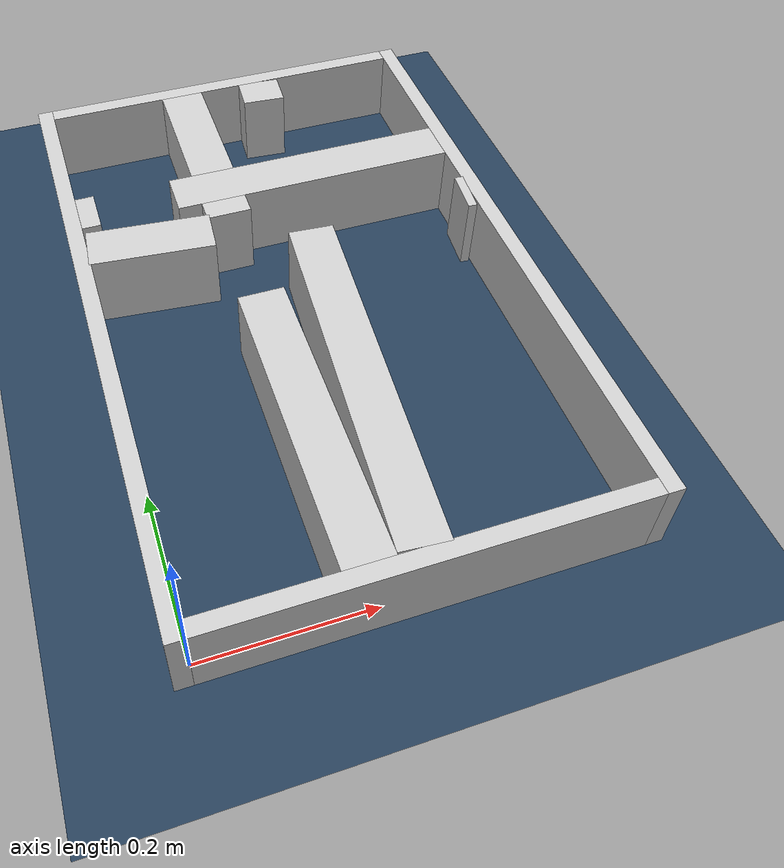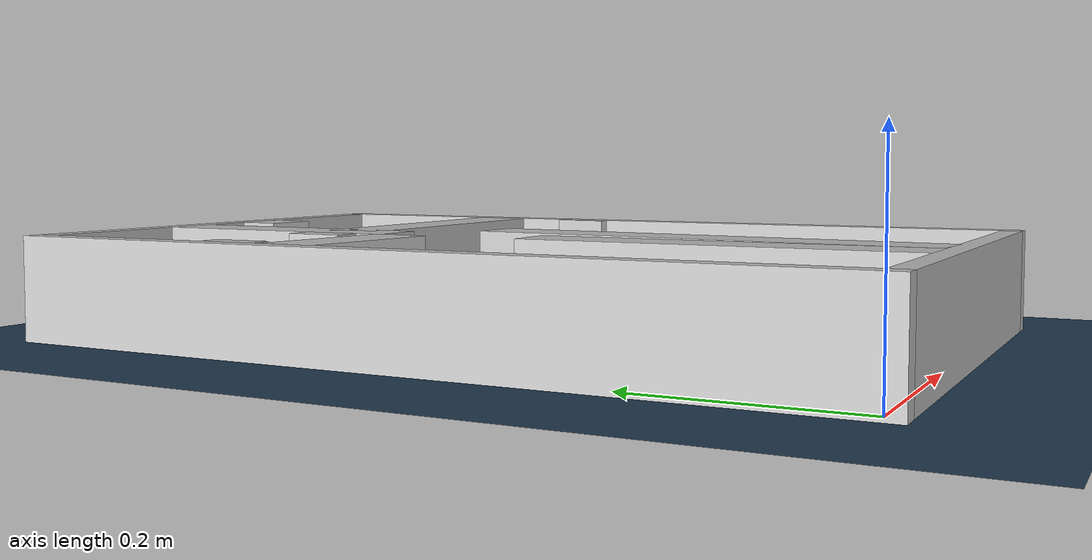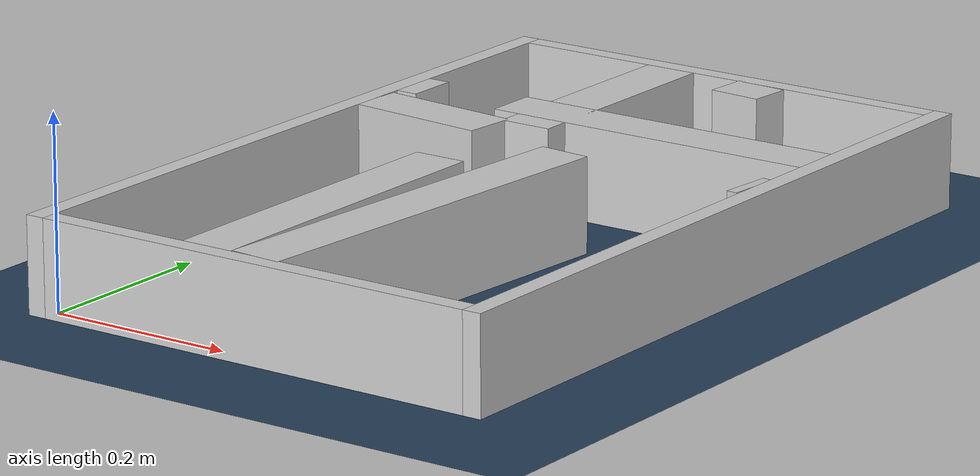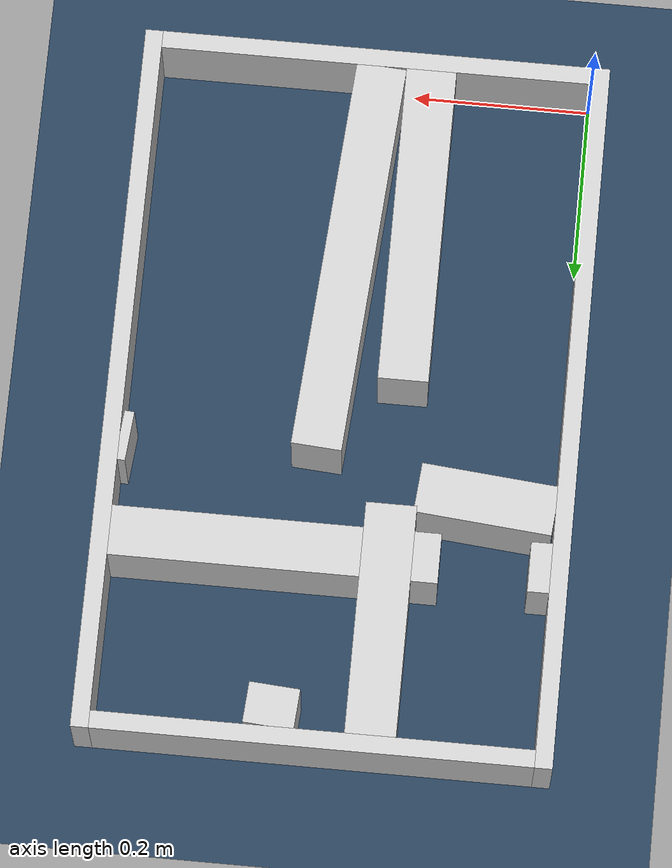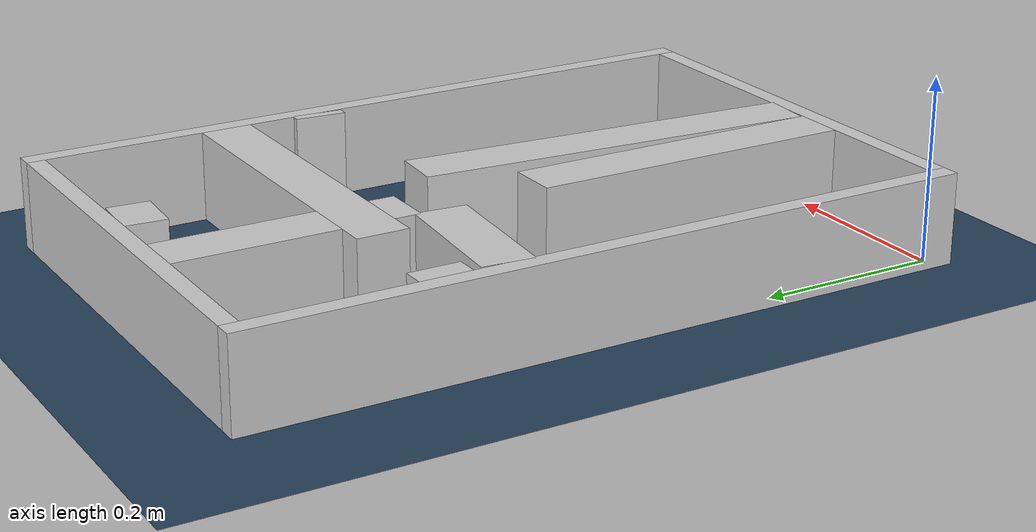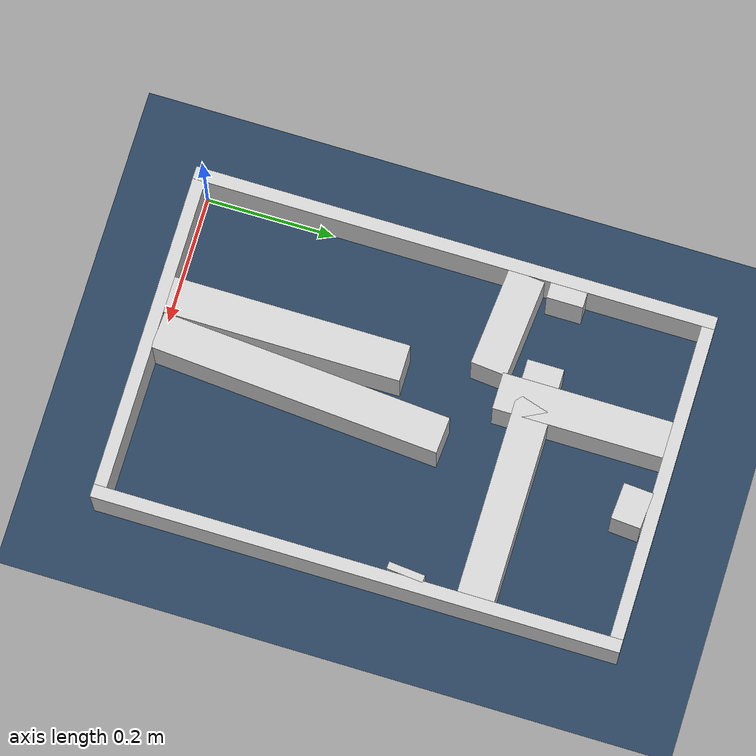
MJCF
<?xml version="1.0" ?>
<mujoco model="generated_real_template">
  <compiler angle="degree"/>
  <option timestep="0.002" integrator="implicitfast" iterations="100" cone="elliptic"/>
  <default>
    <geom density="1"/>
  </default>
  <asset>
    <texture builtin="gradient" height="3072" rgb1="0.3 0.5 0.7" rgb2="0 0 0" type="skybox" width="512"/>
    <texture builtin="checker" height="300" mark="edge" markrgb="0.8 0.8 0.8" name="groundplane" rgb1="0.2 0.3 0.4" rgb2="0.1 0.2 0.3" type="2d" width="300"/>
    <material name="groundplane" reflectance="0.2" texrepeat="5 5" texture="groundplane" texuniform="true"/>
  </asset>
  <worldbody>
    <light dir="0 0 -1" directional="true" pos="0 0 1.5"/>
    <geom name="floor" type="plane" condim="4" friction="0.5 0.005 0.001" material="groundplane" size="0 0 0.05"/>
    <body name="walls">
      <geom name="wall_boundary_left" type="box" condim="4" friction="1.0 0.005 0.0001" rgba="0.8 0.8 0.8 1" pos="-0.010000 0.387500 0.050000" euler="0 0 0.000000" size="0.010000 0.407500 0.050000"/>
      <geom name="wall_boundary_right" type="box" condim="4" friction="1.0 0.005 0.0001" rgba="0.8 0.8 0.8 1" pos="0.500000 0.387500 0.050000" euler="0 0 0.000000" size="0.010000 0.407500 0.050000"/>
      <geom name="wall_boundary_bottom" type="box" condim="4" friction="1.0 0.005 0.0001" rgba="0.8 0.8 0.8 1" pos="0.245000 -0.010000 0.050000" euler="0 0 0.000000" size="0.245000 0.010000 0.050000"/>
      <geom name="wall_boundary_top" type="box" condim="4" friction="1.0 0.005 0.0001" rgba="0.8 0.8 0.8 1" pos="0.245000 0.785000 0.050000" euler="0 0 0.000000" size="0.245000 0.010000 0.050000"/>
      <geom name="wall_inner_1_1" type="box" condim="4" friction="1.0 0.005 0.0001" rgba="0.8 0.8 0.8 1" pos="0.012053 0.569385 0.050000" euler="0 0 0.000000" size="0.012053 0.028500 0.050000"/>
      <geom name="wall_inner_1_2" type="box" condim="4" friction="1.0 0.005 0.0001" rgba="0.8 0.8 0.8 1" pos="0.306623 0.569385 0.050000" euler="0 0 0.000000" size="0.183377 0.028500 0.050000"/>
      <geom name="wall_inner_2_1" type="box" condim="4" friction="1.0 0.005 0.0001" rgba="0.8 0.8 0.8 1" pos="0.181862 0.183950 0.050000" euler="0 0 90.000000" size="0.183950 0.028500 0.050000"/>
      <geom name="wall_inner_2_2" type="box" condim="4" friction="1.0 0.005 0.0001" rgba="0.8 0.8 0.8 1" pos="0.181862 0.643383 0.050000" euler="0 0 90.000000" size="0.131617 0.028500 0.050000"/>
      <geom name="wall_inner_3_1" type="box" condim="4" friction="1.0 0.005 0.0001" rgba="0.8 0.8 0.8 1" pos="0.077261 0.496746 0.050000" euler="0 0 -5.131163" size="0.077571 0.028500 0.050000"/>
      <geom name="wall_inner_3_2" type="box" condim="4" friction="1.0 0.005 0.0001" rgba="0.8 0.8 0.8 1" pos="0.484322 0.460194 0.050000" euler="0 0 -5.131163" size="0.005701 0.028500 0.050000"/>
      <geom name="wall_inner_4_1" type="box" condim="4" friction="1.0 0.005 0.0001" rgba="0.8 0.8 0.8 1" pos="0.254841 0.226878 0.050000" euler="0 0 85.885390" size="0.227465 0.028500 0.050000"/>
      <geom name="wall_inner_4_2" type="box" condim="4" friction="1.0 0.005 0.0001" rgba="0.8 0.8 0.8 1" pos="0.292610 0.751895 0.050000" euler="0 0 85.885390" size="0.023165 0.028500 0.050000"/>
    </body>
  </worldbody>
</mujoco>
